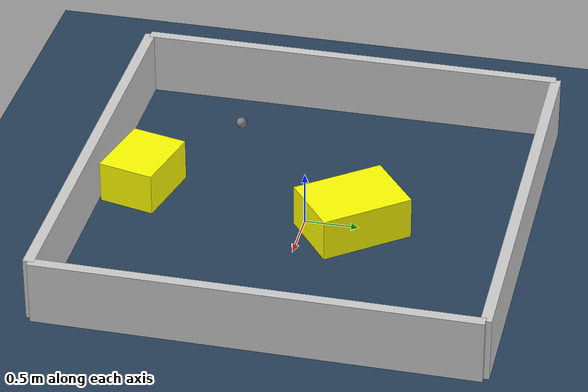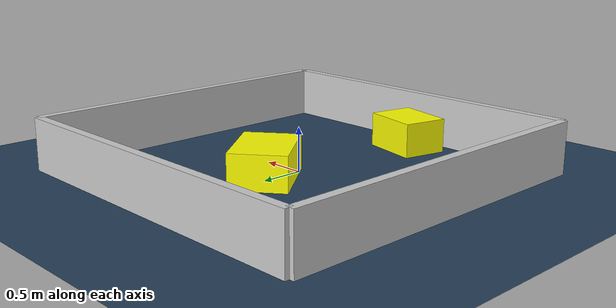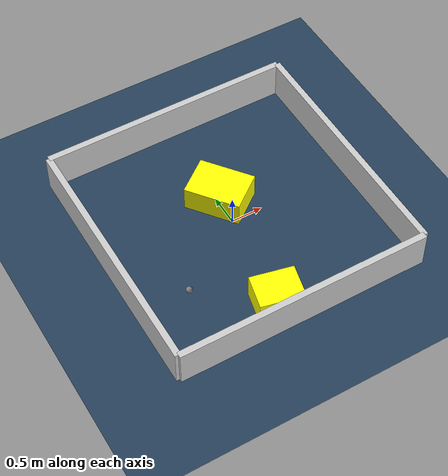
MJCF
<?xml version="1.0" ?>
<mujoco model="generated_environment">
  <option timestep="0.01" integrator="RK4" cone="elliptic"/>
  <default>
    <geom density="1"/>
  </default>
  <asset>
    <texture builtin="gradient" height="3072" rgb1="0.3 0.5 0.7" rgb2="0 0 0" type="skybox" width="512"/>
    <texture builtin="checker" height="300" mark="edge" markrgb="0.8 0.8 0.8" name="groundplane" rgb1="0.2 0.3 0.4" rgb2="0.1 0.2 0.3" type="2d" width="300"/>
    <material name="groundplane" reflectance="0.2" texrepeat="5 5" texture="groundplane" texuniform="true"/>
    <material name="robot" rgba="0.0 1.0 0.0 1"/>
  </asset>
  <worldbody>
    <light dir="0 0 -1" directional="true" pos="0 0 1.5"/>
    <geom condim="4" friction="1.0 0.005 0.001" material="groundplane" name="floor" size="0 0 0.05" type="plane"/>
    <body name="walls">
      <geom name="wall_1" condim="4" pos="-2.0 0.0 0.3" rgba="0.800000011920929 0.800000011920929 0.800000011920929 1.0" size="0.05 2.0 0.3" type="box"/>
      <geom name="wall_2" condim="4" pos="2.0 0.0 0.3" rgba="0.800000011920929 0.800000011920929 0.800000011920929 1.0" size="0.05 2.0 0.3" type="box"/>
      <geom name="wall_3" condim="4" pos="0.0 -2.0 0.3" rgba="0.800000011920929 0.800000011920929 0.800000011920929 1.0" size="2.0 0.05 0.3" type="box"/>
      <geom name="wall_4" condim="4" pos="0.0 2.0 0.3" rgba="0.800000011920929 0.800000011920929 0.800000011920929 1.0" size="2.0 0.05 0.3" type="box"/>
    </body>
    <body name="robot">
      <joint name="joint_x" type="slide" pos="0 0 0" axis="1 0 0"/>
      <joint name="joint_y" type="slide" pos="0 0 0" axis="0 1 0"/>
      <geom name="robot" type="sphere" pos="-1.2256861575561278 -0.8957254520476627 0.2" size="0.05" mass="5." friction="1.0 0.005 0.0001" condim="4"/>
      <site name="sensor_ball"/>
    </body>
    <body name="obstacle_1_movable">
      <geom name="obstacle_1_movable" condim="4" pos="-0.20405705308737554 -1.5919009272502755 0.2" euler="0 0 77.08590189989086" friction="1.0 0.005 0.001" rgba="1 1 0 1" size="0.26826243224584007 0.34079074626906697 0.2" type="box" mass="0.1"/>
      <joint type="free"/>
    </body>
    <body name="obstacle_2_movable">
      <geom name="obstacle_2_movable" condim="4" pos="0.044878044754375734 0.45097278372807104 0.2" euler="0 0 217.68555858804265" friction="1.0 0.005 0.001" rgba="1 1 0 1" size="0.32066039735153967 0.4397222475714041 0.2" type="box" mass="0.1"/>
      <joint type="free"/>
    </body>
  </worldbody>
  <actuator>
    <motor name="actuator_x" joint="joint_x" gear="1" ctrlrange="-1 1"/>
    <motor name="actuator_y" joint="joint_y" gear="1" ctrlrange="-1 1"/>
  </actuator>
</mujoco>
